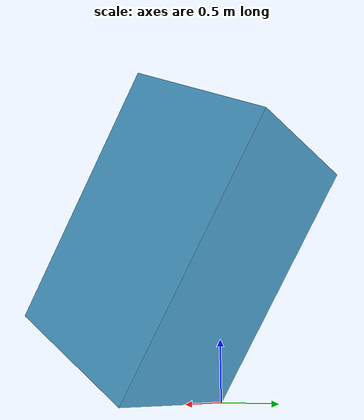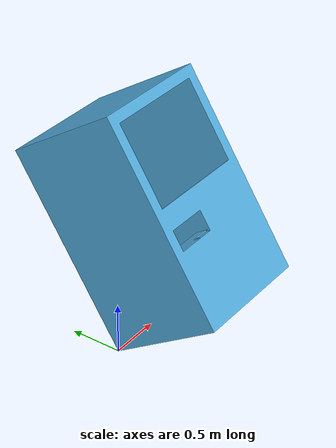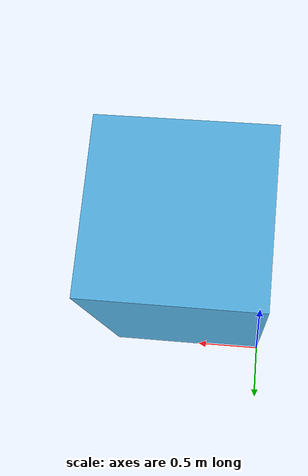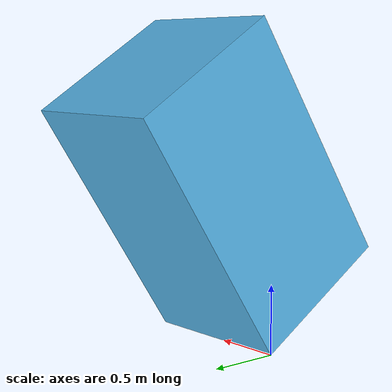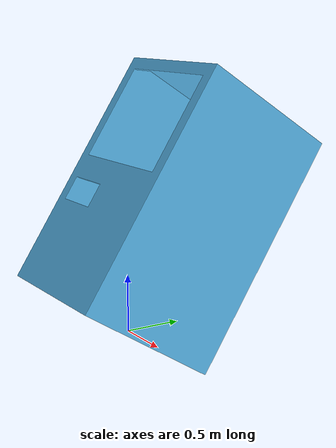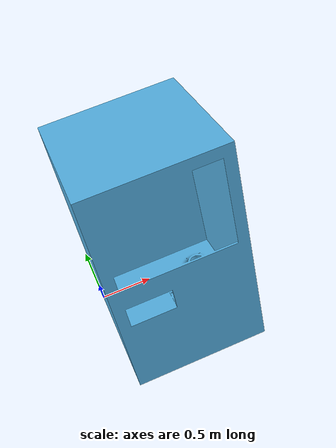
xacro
<robot name="machine" xmlns:xacro="http://ros.org/wiki/xacro">
  <link name="base_link"/>
  <link name="machine_link">
    <visual>
      <origin xyz="0 0 0" rpy="1 0 0"/>
      <geometry>
        <mesh filename="$(find environment)/meshes/machine.stl" scale="1 1 1"/>
      </geometry>
    </visual>
    <collision>
      <origin xyz="0 0 0" rpy="0 0 0"/>
      <geometry>
        <mesh filename="$(find environment)/meshes/machine.stl" scale="1 1 1"/>
      </geometry>
    </collision>
    <inertial>
      <mass value="1"/>
      <origin xyz="0 0 0" rpy="0 0 0"/>
      <inertia ixx="1e-6" ixy="0" ixz="0" iyy="1e-6" iyz="0" izz="1e-6"/>
    </inertial>
  </link>

  <!-- Make it static with a fixed joint to world -->
  <joint name="machine_fixed_joint" type="fixed">
    <parent link="base_link"/>
    <child link="machine_link"/>
    <origin xyz="0 0 0" rpy="0 0 0"/>
  </joint>
</robot>
